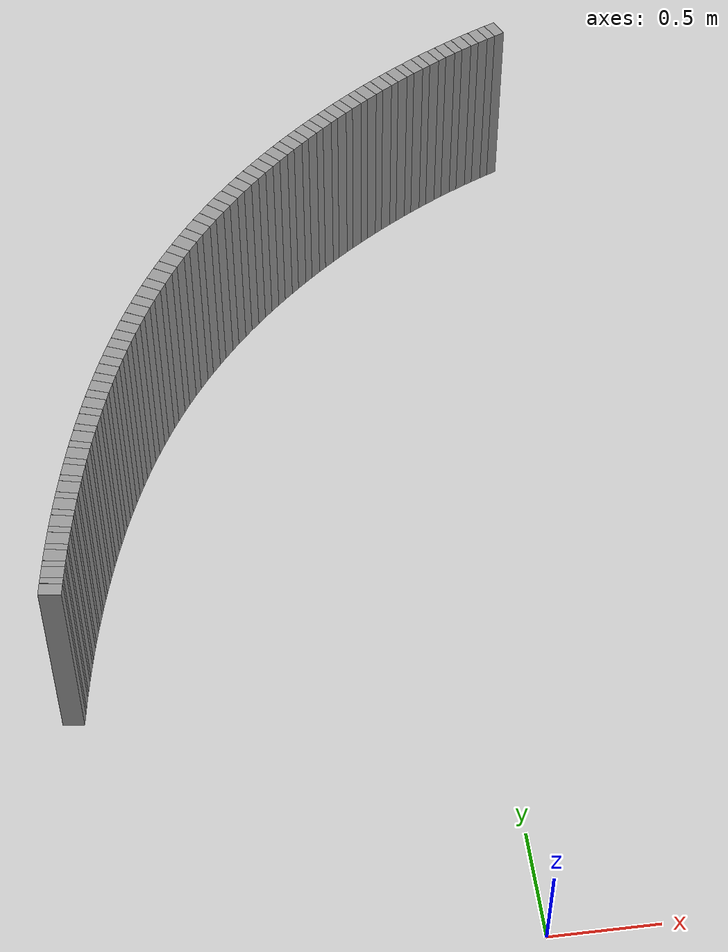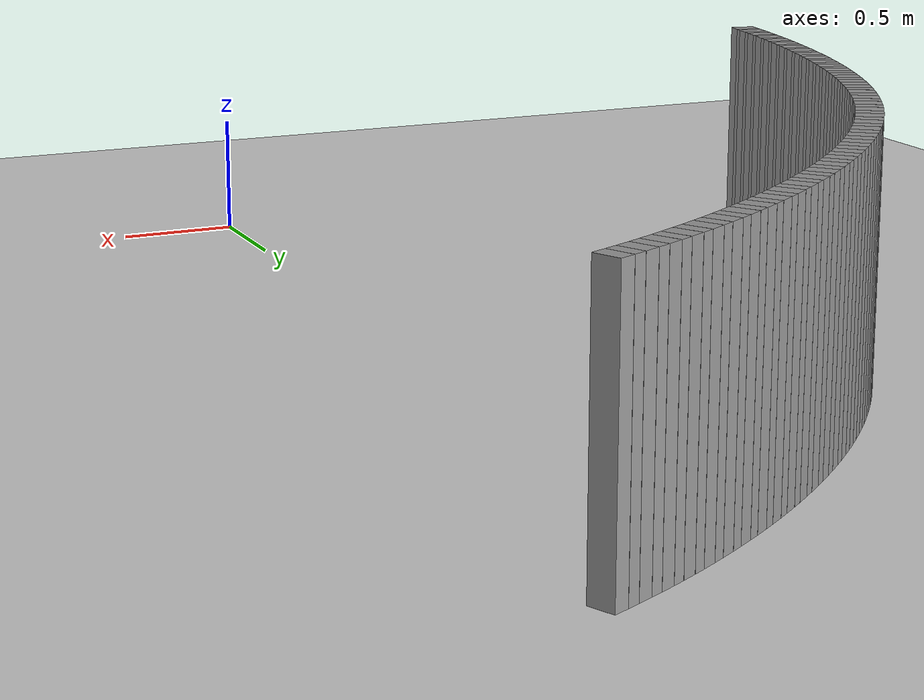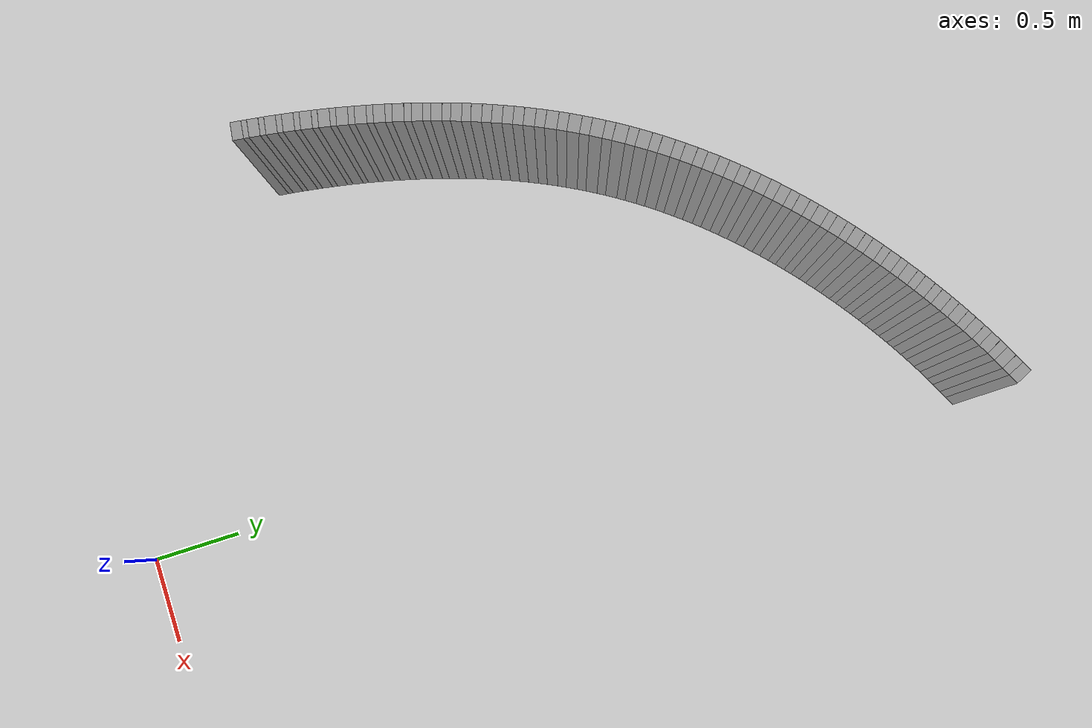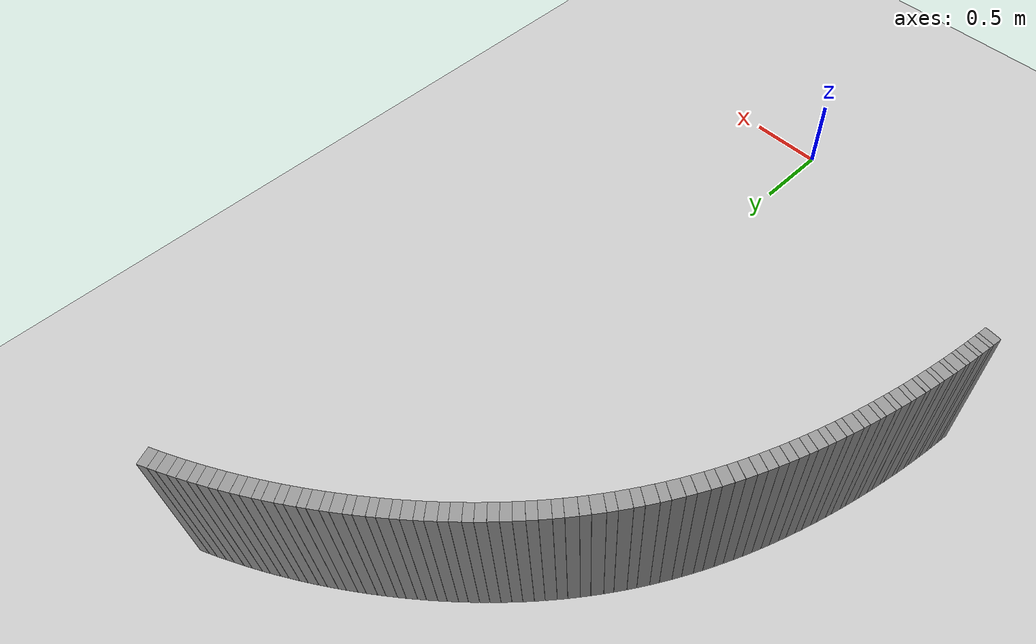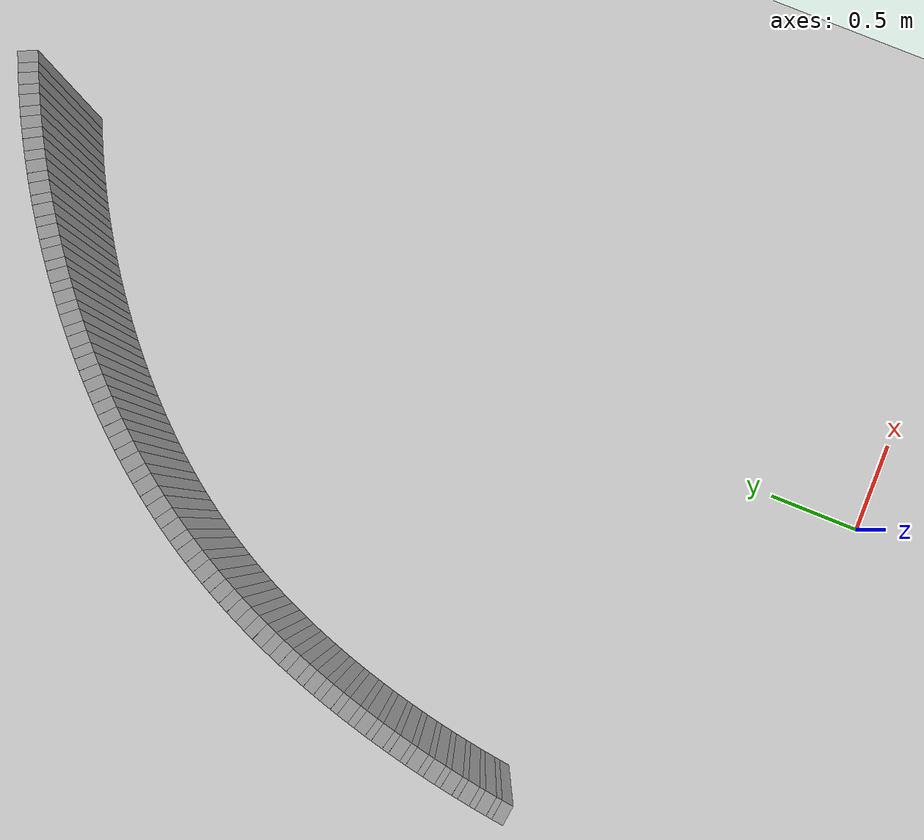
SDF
<sdf version="1.6">
 <world name="default">
  <include><uri>model://ground_plane</uri></include>
  <include><uri>model://sun</uri></include>
  <model name="wall_36_outward">
   <static>true</static>
   <link name="link">
    <collision name="collision">
     <geometry><box><size>0.05851512762365332 0.1 1.0</size></box></geometry>
    </collision>
    <visual name="visual">
     <geometry><box><size>0.05851512762365332 0.1 1.0</size></box></geometry>
     <material>
      <script><uri>file://media/materials/scripts/gazebo.material</uri><name>Gazebo/Gray</name></script>
     </material>
    </visual>
   </link>
   <pose>-1.9470424874296541 1.340607600010691 0.5 0 0 1.4470344970049562</pose>
  </model>
  <model name="wall_37_outward">
   <static>true</static>
   <link name="link">
    <collision name="collision">
     <geometry><box><size>0.030141295012214554 0.1 1.0</size></box></geometry>
    </collision>
    <visual name="visual">
     <geometry><box><size>0.030141295012214554 0.1 1.0</size></box></geometry>
     <material>
      <script><uri>file://media/materials/scripts/gazebo.material</uri><name>Gazebo/Gray</name></script>
     </material>
    </visual>
   </link>
   <pose>-1.9414577005743066 1.384582313626082 0.5 0 0 1.439499101939416</pose>
  </model>
  <model name="wall_38_outward">
   <static>true</static>
   <link name="link">
    <collision name="collision">
     <geometry><box><size>0.059911481965376726 0.1 1.0</size></box></geometry>
    </collision>
    <visual name="visual">
     <geometry><box><size>0.059911481965376726 0.1 1.0</size></box></geometry>
     <material>
      <script><uri>file://media/materials/scripts/gazebo.material</uri><name>Gazebo/Gray</name></script>
     </material>
    </visual>
   </link>
   <pose>-1.9353391597354457 1.4291907599565337 0.5 0 0 1.4319637068738675</pose>
  </model>
  <model name="wall_39_outward">
   <static>true</static>
   <link name="link">
    <collision name="collision">
     <geometry><box><size>0.030703685964613665 0.1 1.0</size></box></geometry>
    </collision>
    <visual name="visual">
     <geometry><box><size>0.030703685964613665 0.1 1.0</size></box></geometry>
     <material>
      <script><uri>file://media/materials/scripts/gazebo.material</uri><name>Gazebo/Gray</name></script>
     </material>
    </visual>
   </link>
   <pose>-1.9289525332044373 1.4740456489890659 0.5 0 0 1.424287710003456</pose>
  </model>
  <model name="wall_40_outward">
   <static>true</static>
   <link name="link">
    <collision name="collision">
     <geometry><box><size>0.06110865213101824 0.1 1.0</size></box></geometry>
    </collision>
    <visual name="visual">
     <geometry><box><size>0.06110865213101824 0.1 1.0</size></box></geometry>
     <material>
      <script><uri>file://media/materials/scripts/gazebo.material</uri><name>Gazebo/Gray</name></script>
     </material>
    </visual>
   </link>
   <pose>-1.9220190302178766 1.5194248871422116 0.5 0 0 1.416611713133052</pose>
  </model>
  <model name="wall_41_outward">
   <static>true</static>
   <link name="link">
    <collision name="collision">
     <geometry><box><size>0.031242492618105622 0.1 1.0</size></box></geometry>
    </collision>
    <visual name="visual">
     <geometry><box><size>0.031242492618105622 0.1 1.0</size></box></geometry>
     <material>
      <script><uri>file://media/materials/scripts/gazebo.material</uri><name>Gazebo/Gray</name></script>
     </material>
    </visual>
   </link>
   <pose>-1.9148071516139984 1.565033473754787 0.5 0 0 1.4088010105607598</pose>
  </model>
  <model name="wall_42_outward">
   <static>true</static>
   <link name="link">
    <collision name="collision">
     <geometry><box><size>0.06206896437567824 0.1 1.0</size></box></geometry>
    </collision>
    <visual name="visual">
     <geometry><box><size>0.06206896437567824 0.1 1.0</size></box></geometry>
     <material>
      <script><uri>file://media/materials/scripts/gazebo.material</uri><name>Gazebo/Gray</name></script>
     </material>
    </visual>
   </link>
   <pose>-1.9070430832570011 1.611038328587831 0.5 0 0 1.4009903079884467</pose>
  </model>
  <model name="wall_43_outward">
   <static>true</static>
   <link name="link">
    <collision name="collision">
     <geometry><box><size>0.03181751389419528 0.1 1.0</size></box></geometry>
    </collision>
    <visual name="visual">
     <geometry><box><size>0.03181751389419528 0.1 1.0</size></box></geometry>
     <material>
      <script><uri>file://media/materials/scripts/gazebo.material</uri><name>Gazebo/Gray</name></script>
     </material>
    </visual>
   </link>
   <pose>-1.8989854515694173 1.6572845287868891 0.5 0 0 1.3930358456307483</pose>
  </model>
  <model name="wall_44_outward">
   <static>true</static>
   <link name="link">
    <collision name="collision">
     <geometry><box><size>0.06276551478844714 0.1 1.0</size></box></geometry>
    </collision>
    <visual name="visual">
     <geometry><box><size>0.06276551478844714 0.1 1.0</size></box></geometry>
     <material>
      <script><uri>file://media/materials/scripts/gazebo.material</uri><name>Gazebo/Gray</name></script>
     </material>
    </visual>
   </link>
   <pose>-1.8903775710575765 1.703785712986872 0.5 0 0 1.3850813832730642</pose>
  </model>
  <model name="wall_45_outward">
   <static>true</static>
   <link name="link">
    <collision name="collision">
     <geometry><box><size>0.03247971047962401 0.1 1.0</size></box></geometry>
    </collision>
    <visual name="visual">
     <geometry><box><size>0.03247971047962401 0.1 1.0</size></box></geometry>
     <material>
      <script><uri>file://media/materials/scripts/gazebo.material</uri><name>Gazebo/Gray</name></script>
     </material>
    </visual>
   </link>
   <pose>-1.8814545922067465 1.7505645552021567 0.5 0 0 1.3769613664216742</pose>
  </model>
  <model name="wall_46_outward">
   <static>true</static>
   <link name="link">
    <collision name="collision">
     <geometry><box><size>0.06318203907273635 0.1 1.0</size></box></geometry>
    </collision>
    <visual name="visual">
     <geometry><box><size>0.06318203907273635 0.1 1.0</size></box></geometry>
     <material>
      <script><uri>file://media/materials/scripts/gazebo.material</uri><name>Gazebo/Gray</name></script>
     </material>
    </visual>
   </link>
   <pose>-1.8719897320360075 1.7974492560894066 0.5 0 0 1.3688413495702862</pose>
  </model>
  <model name="wall_47_outward">
   <static>true</static>
   <link name="link">
    <collision name="collision">
     <geometry><box><size>0.03326260273348168 0.1 1.0</size></box></geometry>
    </collision>
    <visual name="visual">
     <geometry><box><size>0.03326260273348168 0.1 1.0</size></box></geometry>
     <material>
      <script><uri>file://media/materials/scripts/gazebo.material</uri><name>Gazebo/Gray</name></script>
     </material>
    </visual>
   </link>
   <pose>-1.8621816858538134 1.8446632172801827 0.5 0 0 1.3605256030459898</pose>
  </model>
  <model name="wall_48_outward">
   <static>true</static>
   <link name="link">
    <collision name="collision">
     <geometry><box><size>0.06331190520389895 0.1 1.0</size></box></geometry>
    </collision>
    <visual name="visual">
     <geometry><box><size>0.06331190520389895 0.1 1.0</size></box></geometry>
     <material>
      <script><uri>file://media/materials/scripts/gazebo.material</uri><name>Gazebo/Gray</name></script>
     </material>
    </visual>
   </link>
   <pose>-1.8518457313955587 1.8918309025588722 0.5 0 0 1.3522098565217038</pose>
  </model>
  <model name="wall_49_outward">
   <static>true</static>
   <link name="link">
    <collision name="collision">
     <geometry><box><size>0.034242978003103164 0.1 1.0</size></box></geometry>
    </collision>
    <visual name="visual">
     <geometry><box><size>0.034242978003103164 0.1 1.0</size></box></geometry>
     <material>
      <script><uri>file://media/materials/scripts/gazebo.material</uri><name>Gazebo/Gray</name></script>
     </material>
    </visual>
   </link>
   <pose>-1.841125396906862 1.9394152856705875 0.5 0 0 1.3436490074532073</pose>
  </model>
  <model name="wall_50_outward">
   <static>true</static>
   <link name="link">
    <collision name="collision">
     <geometry><box><size>0.06316349887364199 0.1 1.0</size></box></geometry>
    </collision>
    <visual name="visual">
     <geometry><box><size>0.06316349887364199 0.1 1.0</size></box></geometry>
     <material>
      <script><uri>file://media/materials/scripts/gazebo.material</uri><name>Gazebo/Gray</name></script>
     </material>
    </visual>
   </link>
   <pose>-1.8298943165576484 1.9868054601793745 0.5 0 0 1.335088158384695</pose>
  </model>
  <model name="wall_51_outward">
   <static>true</static>
   <link name="link">
    <collision name="collision">
     <geometry><box><size>0.03551502997922691 0.1 1.0</size></box></geometry>
    </collision>
    <visual name="visual">
     <geometry><box><size>0.03551502997922691 0.1 1.0</size></box></geometry>
     <material>
      <script><uri>file://media/materials/scripts/gazebo.material</uri><name>Gazebo/Gray</name></script>
     </material>
    </visual>
   </link>
   <pose>-1.8182188960074326 2.0347429544611693 0.5 0 0 1.3262092842302167</pose>
  </model>
  <model name="wall_52_outward">
   <static>true</static>
   <link name="link">
    <collision name="collision">
     <geometry><box><size>0.0627532570535955 0.1 1.0</size></box></geometry>
    </collision>
    <visual name="visual">
     <geometry><box><size>0.0627532570535955 0.1 1.0</size></box></geometry>
     <material>
      <script><uri>file://media/materials/scripts/gazebo.material</uri><name>Gazebo/Gray</name></script>
     </material>
    </visual>
   </link>
   <pose>-1.8060507895783742 2.082346077479201 0.5 0 0 1.317330410075743</pose>
  </model>
  <model name="wall_53_outward">
   <static>true</static>
   <link name="link">
    <collision name="collision">
     <geometry><box><size>0.037159612835387726 0.1 1.0</size></box></geometry>
    </collision>
    <visual name="visual">
     <geometry><box><size>0.037159612835387726 0.1 1.0</size></box></geometry>
     <material>
      <script><uri>file://media/materials/scripts/gazebo.material</uri><name>Gazebo/Gray</name></script>
     </material>
    </visual>
   </link>
   <pose>-1.7933567934781605 2.1306623019021345 0.5 0 0 1.308040373238367</pose>
  </model>
  <model name="wall_54_outward">
   <static>true</static>
   <link name="link">
    <collision name="collision">
     <geometry><box><size>0.062111140385945215 0.1 1.0</size></box></geometry>
    </collision>
    <visual name="visual">
     <geometry><box><size>0.062111140385945215 0.1 1.0</size></box></geometry>
     <material>
      <script><uri>file://media/materials/scripts/gazebo.material</uri><name>Gazebo/Gray</name></script>
     </material>
    </visual>
   </link>
   <pose>-1.7801861038155211 2.1785178527508213 0.5 0 0 1.2987503364009896</pose>
  </model>
  <model name="wall_55_outward">
   <static>true</static>
   <link name="link">
    <collision name="collision">
     <geometry><box><size>0.03920906291768073 0.1 1.0</size></box></geometry>
    </collision>
    <visual name="visual">
     <geometry><box><size>0.03920906291768073 0.1 1.0</size></box></geometry>
     <material>
      <script><uri>file://media/materials/scripts/gazebo.material</uri><name>Gazebo/Gray</name></script>
     </material>
    </visual>
   </link>
   <pose>-1.7663887471592394 2.2272622919024005 0.5 0 0 1.2889479136906214</pose>
  </model>
  <model name="wall_56_outward">
   <static>true</static>
   <link name="link">
    <collision name="collision">
     <geometry><box><size>0.06127646381022511 0.1 1.0</size></box></geometry>
    </collision>
    <visual name="visual">
     <geometry><box><size>0.06127646381022511 0.1 1.0</size></box></geometry>
     <material>
      <script><uri>file://media/materials/scripts/gazebo.material</uri><name>Gazebo/Gray</name></script>
     </material>
    </visual>
   </link>
   <pose>-1.752126582053303 2.2754376819124733 0.5 0 0 1.2791454909802618</pose>
  </model>
  <model name="wall_57_outward">
   <static>true</static>
   <link name="link">
    <collision name="collision">
     <geometry><box><size>0.04179918478633313 0.1 1.0</size></box></geometry>
    </collision>
    <visual name="visual">
     <geometry><box><size>0.04179918478633313 0.1 1.0</size></box></geometry>
     <material>
      <script><uri>file://media/materials/scripts/gazebo.material</uri><name>Gazebo/Gray</name></script>
     </material>
    </visual>
   </link>
   <pose>-1.7370988731864154 2.324735200867993 0.5 0 0 1.2686955045911017</pose>
  </model>
  <model name="wall_58_outward">
   <static>true</static>
   <link name="link">
    <collision name="collision">
     <geometry><box><size>0.06029681220757901 0.1 1.0</size></box></geometry>
    </collision>
    <visual name="visual">
     <geometry><box><size>0.06029681220757901 0.1 1.0</size></box></geometry>
     <material>
      <script><uri>file://media/materials/scripts/gazebo.material</uri><name>Gazebo/Gray</name></script>
     </material>
    </visual>
   </link>
   <pose>-1.721610450878877 2.3733761107940663 0.5 0 0 1.2582455182019454</pose>
  </model>
  <model name="wall_59_outward">
   <static>true</static>
   <link name="link">
    <collision name="collision">
     <geometry><box><size>0.04490399578796643 0.1 1.0</size></box></geometry>
    </collision>
    <visual name="visual">
     <geometry><box><size>0.04490399578796643 0.1 1.0</size></box></geometry>
     <material>
      <script><uri>file://media/materials/scripts/gazebo.material</uri><name>Gazebo/Gray</name></script>
     </material>
    </visual>
   </link>
   <pose>-1.7051971176817826 2.4233493004802633 0.5 0 0 1.2470192834524751</pose>
  </model>
  <model name="wall_60_outward">
   <static>true</static>
   <link name="link">
    <collision name="collision">
     <geometry><box><size>0.05922845943594854 0.1 1.0</size></box></geometry>
    </collision>
    <visual name="visual">
     <geometry><box><size>0.05922845943594854 0.1 1.0</size></box></geometry>
     <material>
      <script><uri>file://media/materials/scripts/gazebo.material</uri><name>Gazebo/Gray</name></script>
     </material>
    </visual>
   </link>
   <pose>-1.6883176858698055 2.47260265614514 0.5 0 0 1.2357930487030033</pose>
  </model>
  <model name="wall_61_outward">
   <static>true</static>
   <link name="link">
    <collision name="collision">
     <geometry><box><size>0.048531635326042565 0.1 1.0</size></box></geometry>
    </collision>
    <visual name="visual">
     <geometry><box><size>0.048531635326042565 0.1 1.0</size></box></geometry>
     <material>
      <script><uri>file://media/materials/scripts/gazebo.material</uri><name>Gazebo/Gray</name></script>
     </material>
    </visual>
   </link>
   <pose>-1.6703259596412994 2.523388988006415 0.5 0 0 1.2236598421759592</pose>
  </model>
  <model name="wall_62_outward">
   <static>true</static>
   <link name="link">
    <collision name="collision">
     <geometry><box><size>0.058131444615278374 0.1 1.0</size></box></geometry>
    </collision>
    <visual name="visual">
     <geometry><box><size>0.058131444615278374 0.1 1.0</size></box></geometry>
     <material>
      <script><uri>file://media/materials/scripts/gazebo.material</uri><name>Gazebo/Gray</name></script>
     </material>
    </visual>
   </link>
   <pose>-1.6518513347425898 2.5734173555664475 0.5 0 0 1.2115266356489098</pose>
  </model>
  <model name="wall_63_outward">
   <static>true</static>
   <link name="link">
    <collision name="collision">
     <geometry><box><size>0.05257569714983823 0.1 1.0</size></box></geometry>
    </collision>
    <visual name="visual">
     <geometry><box><size>0.05257569714983823 0.1 1.0</size></box></geometry>
     <material>
      <script><uri>file://media/materials/scripts/gazebo.material</uri><name>Gazebo/Gray</name></script>
     </material>
    </visual>
   </link>
   <pose>-1.632066870419663 2.6251132042533154 0.5 0 0 1.1983823328686076</pose>
  </model>
  <model name="wall_64_outward">
   <static>true</static>
   <link name="link">
    <collision name="collision">
     <geometry><box><size>0.05706681265305787 0.1 1.0</size></box></geometry>
    </collision>
    <visual name="visual">
     <geometry><box><size>0.05706681265305787 0.1 1.0</size></box></geometry>
     <material>
      <script><uri>file://media/materials/scripts/gazebo.material</uri><name>Gazebo/Gray</name></script>
     </material>
    </visual>
   </link>
   <pose>-1.6117708983937162 2.676037794744469 0.5 0 0 1.1852380300883172</pose>
  </model>
  <model name="wall_65_outward">
   <static>true</static>
   <link name="link">
    <collision name="collision">
     <geometry><box><size>0.05687668737168199 0.1 1.0</size></box></geometry>
    </collision>
    <visual name="visual">
     <geometry><box><size>0.05687668737168199 0.1 1.0</size></box></geometry>
     <material>
      <script><uri>file://media/materials/scripts/gazebo.material</uri><name>Gazebo/Gray</name></script>
     </material>
    </visual>
   </link>
   <pose>-1.589971558549408 2.7286724317441533 0.5 0 0 1.1710183790516235</pose>
  </model>
  <model name="wall_66_outward">
   <static>true</static>
   <link name="link">
    <collision name="collision">
     <geometry><box><size>0.056096900825243254 0.1 1.0</size></box></geometry>
    </collision>
    <visual name="visual">
     <geometry><box><size>0.056096900825243254 0.1 1.0</size></box></geometry>
     <material>
      <script><uri>file://media/materials/scripts/gazebo.material</uri><name>Gazebo/Gray</name></script>
     </material>
    </visual>
   </link>
   <pose>-1.56761984461702 2.780547257147354 0.5 0 0 1.1567987280149152</pose>
  </model>
  <model name="wall_67_outward">
   <static>true</static>
   <link name="link">
    <collision name="collision">
     <geometry><box><size>0.06114696510490706 0.1 1.0</size></box></geometry>
    </collision>
    <visual name="visual">
     <geometry><box><size>0.06114696510490706 0.1 1.0</size></box></geometry>
     <material>
      <script><uri>file://media/materials/scripts/gazebo.material</uri><name>Gazebo/Gray</name></script>
     </material>
    </visual>
   </link>
   <pose>-1.5436114096255436 2.8340255300123283 0.5 0 0 1.141511391297089</pose>
  </model>
  <model name="wall_68_outward">
   <static>true</static>
   <link name="link">
    <collision name="collision">
     <geometry><box><size>0.05527921187933009 0.1 1.0</size></box></geometry>
    </collision>
    <visual name="visual">
     <geometry><box><size>0.05527921187933009 0.1 1.0</size></box></geometry>
     <material>
      <script><uri>file://media/materials/scripts/gazebo.material</uri><name>Gazebo/Gray</name></script>
     </material>
    </visual>
   </link>
   <pose>-1.5189990782692024 2.886777774826888 0.5 0 0 1.12622405457927</pose>
  </model>
  <model name="wall_69_outward">
   <static>true</static>
   <link name="link">
    <collision name="collision">
     <geometry><box><size>0.06513547587774239 0.1 1.0</size></box></geometry>
    </collision>
    <visual name="visual">
     <geometry><box><size>0.06513547587774239 0.1 1.0</size></box></geometry>
     <material>
      <script><uri>file://media/materials/scripts/gazebo.material</uri><name>Gazebo/Gray</name></script>
     </material>
    </visual>
   </link>
   <pose>-1.4926286784846798 2.940900668005831 0.5 0 0 1.1099394658735875</pose>
  </model>
  <model name="wall_70_outward">
   <static>true</static>
   <link name="link">
    <collision name="collision">
     <geometry><box><size>0.0546627536988429 0.1 1.0</size></box></geometry>
    </collision>
    <visual name="visual">
     <geometry><box><size>0.0546627536988429 0.1 1.0</size></box></geometry>
     <material>
      <script><uri>file://media/materials/scripts/gazebo.material</uri><name>Gazebo/Gray</name></script>
     </material>
    </visual>
   </link>
   <pose>-1.4655935829752147 2.994349442726532 0.5 0 0 1.0936548771679133</pose>
  </model>
  <model name="wall_71_outward">
   <static>true</static>
   <link name="link">
    <collision name="collision">
     <geometry><box><size>0.06843347329352682 0.1 1.0</size></box></geometry>
    </collision>
    <visual name="visual">
     <geometry><box><size>0.06843347329352682 0.1 1.0</size></box></geometry>
     <material>
      <script><uri>file://media/materials/scripts/gazebo.material</uri><name>Gazebo/Gray</name></script>
     </material>
    </visual>
   </link>
   <pose>-1.4368104072647148 3.0487500431290107 0.5 0 0 1.0765456741419932</pose>
  </model>
  <model name="wall_72_outward">
   <static>true</static>
   <link name="link">
    <collision name="collision">
     <geometry><box><size>0.05428522615266177 0.1 1.0</size></box></geometry>
    </collision>
    <visual name="visual">
     <geometry><box><size>0.05428522615266177 0.1 1.0</size></box></geometry>
     <material>
      <script><uri>file://media/materials/scripts/gazebo.material</uri><name>Gazebo/Gray</name></script>
     </material>
    </visual>
   </link>
   <pose>-1.407296334612559 3.102542398141086 0.5 0 0 1.0594364711160722</pose>
  </model>
  <model name="wall_73_outward">
   <static>true</static>
   <link name="link">
    <collision name="collision">
     <geometry><box><size>0.07073385974991644 0.1 1.0</size></box></geometry>
    </collision>
    <visual name="visual">
     <geometry><box><size>0.07073385974991644 0.1 1.0</size></box></geometry>
     <material>
      <script><uri>file://media/materials/scripts/gazebo.material</uri><name>Gazebo/Gray</name></script>
     </material>
    </visual>
   </link>
   <pose>-1.3761637384397991 3.156744835454118 0.5 0 0 1.0417520844311</pose>
  </model>
  <model name="wall_74_outward">
   <static>true</static>
   <link name="link">
    <collision name="collision">
     <geometry><box><size>0.05417058609555801 0.1 1.0</size></box></geometry>
    </collision>
    <visual name="visual">
     <geometry><box><size>0.05417058609555801 0.1 1.0</size></box></geometry>
     <material>
      <script><uri>file://media/materials/scripts/gazebo.material</uri><name>Gazebo/Gray</name></script>
     </material>
    </visual>
   </link>
   <pose>-1.3442322268360458 3.2104138129347484 0.5 0 0 1.0240676977461278</pose>
  </model>
  <model name="wall_75_outward">
   <static>true</static>
   <link name="link">
    <collision name="collision">
     <geometry><box><size>0.07178554663241363 0.1 1.0</size></box></geometry>
    </collision>
    <visual name="visual">
     <geometry><box><size>0.07178554663241363 0.1 1.0</size></box></geometry>
     <material>
      <script><uri>file://media/materials/scripts/gazebo.material</uri><name>Gazebo/Gray</name></script>
     </material>
    </visual>
   </link>
   <pose>-1.3109429695746762 3.2638717315287855 0.5 0 0 1.00612034760789</pose>
  </model>
  <model name="wall_76_outward">
   <static>true</static>
   <link name="link">
    <collision name="collision">
     <geometry><box><size>0.05432564529804905 0.1 1.0</size></box></geometry>
    </collision>
    <visual name="visual">
     <geometry><box><size>0.05432564529804905 0.1 1.0</size></box></geometry>
     <material>
      <script><uri>file://media/materials/scripts/gazebo.material</uri><name>Gazebo/Gray</name></script>
     </material>
    </visual>
   </link>
   <pose>-1.2767898050830626 3.3168741419257857 0.5 0 0 0.9881729974696609</pose>
  </model>
  <model name="wall_77_outward">
   <static>true</static>
   <link name="link">
    <collision name="collision">
     <geometry><box><size>0.07160525797664448 0.1 1.0</size></box></geometry>
    </collision>
    <visual name="visual">
     <geometry><box><size>0.07160525797664448 0.1 1.0</size></box></geometry>
     <material>
      <script><uri>file://media/materials/scripts/gazebo.material</uri><name>Gazebo/Gray</name></script>
     </material>
    </visual>
   </link>
   <pose>-1.2416131622804643 3.3690942552100642 0.5 0 0 0.9702707267371646</pose>
  </model>
  <model name="wall_78_outward">
   <static>true</static>
   <link name="link">
    <collision name="collision">
     <geometry><box><size>0.05473971826964413 0.1 1.0</size></box></geometry>
    </collision>
    <visual name="visual">
     <geometry><box><size>0.05473971826964413 0.1 1.0</size></box></geometry>
     <material>
      <script><uri>file://media/materials/scripts/gazebo.material</uri><name>Gazebo/Gray</name></script>
     </material>
    </visual>
   </link>
   <pose>-1.2055141385157198 3.420933523084218 0.5 0 0 0.9523684560046604</pose>
  </model>
  <model name="wall_79_outward">
   <static>true</static>
   <link name="link">
    <collision name="collision">
     <geometry><box><size>0.07015960992970768 0.1 1.0</size></box></geometry>
    </collision>
    <visual name="visual">
     <geometry><box><size>0.07015960992970768 0.1 1.0</size></box></geometry>
     <material>
      <script><uri>file://media/materials/scripts/gazebo.material</uri><name>Gazebo/Gray</name></script>
     </material>
    </visual>
   </link>
   <pose>-1.1688104292294295 3.4714558237645194 0.5 0 0 0.9348276540445286</pose>
  </model>
  <model name="wall_80_outward">
   <static>true</static>
   <link name="link">
    <collision name="collision">
     <geometry><box><size>0.05538550978526477 0.1 1.0</size></box></geometry>
    </collision>
    <visual name="visual">
     <geometry><box><size>0.05538550978526477 0.1 1.0</size></box></geometry>
     <material>
      <script><uri>file://media/materials/scripts/gazebo.material</uri><name>Gazebo/Gray</name></script>
     </material>
    </visual>
   </link>
   <pose>-1.1311379860146915 3.521664213536539 0.5 0 0 0.9172868520843916</pose>
  </model>
  <model name="wall_81_outward">
   <static>true</static>
   <link name="link">
    <collision name="collision">
     <geometry><box><size>0.0677507524285668 0.1 1.0</size></box></geometry>
    </collision>
    <visual name="visual">
     <geometry><box><size>0.0677507524285668 0.1 1.0</size></box></geometry>
     <material>
      <script><uri>file://media/materials/scripts/gazebo.material</uri><name>Gazebo/Gray</name></script>
     </material>
    </visual>
   </link>
   <pose>-1.0932534150571145 3.5701938426744126 0.5 0 0 0.9003483540104505</pose>
  </model>
  <model name="wall_82_outward">
   <static>true</static>
   <link name="link">
    <collision name="collision">
     <geometry><box><size>0.05621940040499649 0.1 1.0</size></box></geometry>
    </collision>
    <visual name="visual">
     <geometry><box><size>0.05621940040499649 0.1 1.0</size></box></geometry>
     <material>
      <script><uri>file://media/materials/scripts/gazebo.material</uri><name>Gazebo/Gray</name></script>
     </material>
    </visual>
   </link>
   <pose>-1.0543692402209621 3.618462853916585 0.5 0 0 0.8834098559365133</pose>
  </model>
  <model name="wall_83_outward">
   <static>true</static>
   <link name="link">
    <collision name="collision">
     <geometry><box><size>0.06469793516622273 0.1 1.0</size></box></geometry>
    </collision>
    <visual name="visual">
     <geometry><box><size>0.06469793516622273 0.1 1.0</size></box></geometry>
     <material>
      <script><uri>file://media/materials/scripts/gazebo.material</uri><name>Gazebo/Gray</name></script>
     </material>
    </visual>
   </link>
   <pose>-1.015605325106149 3.664856511770904 0.5 0 0 0.8672346668168872</pose>
  </model>
  <model name="wall_84_outward">
   <static>true</static>
   <link name="link">
    <collision name="collision">
     <geometry><box><size>0.05718601595901142 0.1 1.0</size></box></geometry>
    </collision>
    <visual name="visual">
     <geometry><box><size>0.05718601595901142 0.1 1.0</size></box></geometry>
     <material>
      <script><uri>file://media/materials/scripts/gazebo.material</uri><name>Gazebo/Gray</name></script>
     </material>
    </visual>
   </link>
   <pose>-0.9758294245760906 3.7110253337804204 0.5 0 0 0.8510594776972562</pose>
  </model>
  <model name="wall_85_outward">
   <static>true</static>
   <link name="link">
    <collision name="collision">
     <geometry><box><size>0.06127315137259163 0.1 1.0</size></box></geometry>
    </collision>
    <visual name="visual">
     <geometry><box><size>0.06127315137259163 0.1 1.0</size></box></geometry>
     <material>
      <script><uri>file://media/materials/scripts/gazebo.material</uri><name>Gazebo/Gray</name></script>
     </material>
    </visual>
   </link>
   <pose>-0.9364355299968261 3.7552526905588275 0.5 0 0 0.8357405907182818</pose>
  </model>
  <model name="wall_86_outward">
   <static>true</static>
   <link name="link">
    <collision name="collision">
     <geometry><box><size>0.05822298617824019 0.1 1.0</size></box></geometry>
    </collision>
    <visual name="visual">
     <geometry><box><size>0.05822298617824019 0.1 1.0</size></box></geometry>
     <material>
      <script><uri>file://media/materials/scripts/gazebo.material</uri><name>Gazebo/Gray</name></script>
     </material>
    </visual>
   </link>
   <pose>-0.896038268820148 3.799271819591289 0.5 0 0 0.8204217037393075</pose>
  </model>
  <model name="wall_87_outward">
   <static>true</static>
   <link name="link">
    <collision name="collision">
     <geometry><box><size>0.05787155949742976 0.1 1.0</size></box></geometry>
    </collision>
    <visual name="visual">
     <geometry><box><size>0.05787155949742976 0.1 1.0</size></box></geometry>
     <material>
      <script><uri>file://media/materials/scripts/gazebo.material</uri><name>Gazebo/Gray</name></script>
     </material>
    </visual>
   </link>
   <pose>-0.8561509474812807 3.841441846241131 0.5 0 0 0.8059533090813394</pose>
  </model>
  <model name="wall_88_outward">
   <static>true</static>
   <link name="link">
    <collision name="collision">
     <geometry><box><size>0.05926475247304709 0.1 1.0</size></box></geometry>
    </collision>
    <visual name="visual">
     <geometry><box><size>0.05926475247304709 0.1 1.0</size></box></geometry>
     <material>
      <script><uri>file://media/materials/scripts/gazebo.material</uri><name>Gazebo/Gray</name></script>
     </material>
    </visual>
   </link>
   <pose>-0.8152897968975125 3.883399155267605 0.5 0 0 0.7914849144233705</pose>
  </model>
  <model name="wall_89_outward">
   <static>true</static>
   <link name="link">
    <collision name="collision">
     <geometry><box><size>0.054712216489178005 0.1 1.0</size></box></geometry>
    </collision>
    <visual name="visual">
     <geometry><box><size>0.054712216489178005 0.1 1.0</size></box></geometry>
     <material>
      <script><uri>file://media/materials/scripts/gazebo.material</uri><name>Gazebo/Gray</name></script>
     </material>
    </visual>
   </link>
   <pose>-0.7749744844443324 3.9236758393258686 0.5 0 0 0.7778064337625529</pose>
  </model>
  <model name="wall_90_outward">
   <static>true</static>
   <link name="link">
    <collision name="collision">
     <geometry><box><size>0.060247963004456055 0.1 1.0</size></box></geometry>
    </collision>
    <visual name="visual">
     <geometry><box><size>0.060247963004456055 0.1 1.0</size></box></geometry>
     <material>
      <script><uri>file://media/materials/scripts/gazebo.material</uri><name>Gazebo/Gray</name></script>
     </material>
    </visual>
   </link>
   <pose>-0.7337354084302015 3.9637151343259895 0.5 0 0 0.76412795310173</pose>
  </model>
  <model name="wall_91_outward">
   <static>true</static>
   <link name="link">
    <collision name="collision">
     <geometry><box><size>0.05195940054164509 0.1 1.0</size></box></geometry>
    </collision>
    <visual name="visual">
     <geometry><box><size>0.05195940054164509 0.1 1.0</size></box></geometry>
     <material>
      <script><uri>file://media/materials/scripts/gazebo.material</uri><name>Gazebo/Gray</name></script>
     </material>
    </visual>
   </link>
   <pose>-0.6929974180147995 4.002288534290907 0.5 0 0 0.7511377376288968</pose>
  </model>
  <model name="wall_92_outward">
   <static>true</static>
   <link name="link">
    <collision name="collision">
     <geometry><box><size>0.06111648779227445 0.1 1.0</size></box></geometry>
    </collision>
    <visual name="visual">
     <geometry><box><size>0.06111648779227445 0.1 1.0</size></box></geometry>
     <material>
      <script><uri>file://media/materials/scripts/gazebo.material</uri><name>Gazebo/Gray</name></script>
     </material>
    </visual>
   </link>
   <pose>-0.651404086751254 4.040582136376777 0.5 0 0 0.7381475221560797</pose>
  </model>
  <model name="wall_93_outward">
   <static>true</static>
   <link name="link">
    <collision name="collision">
     <geometry><box><size>0.04975806113924808 0.1 1.0</size></box></geometry>
    </collision>
    <visual name="visual">
     <geometry><box><size>0.04975806113924808 0.1 1.0</size></box></geometry>
     <material>
      <script><uri>file://media/materials/scripts/gazebo.material</uri><name>Gazebo/Gray</name></script>
     </material>
    </visual>
   </link>
   <pose>-0.6101893929430054 4.077656693234671 0.5 0 0 0.7257076860306201</pose>
  </model>
  <model name="wall_94_outward">
   <static>true</static>
   <link name="link">
    <collision name="collision">
     <geometry><box><size>0.06182487304968128 0.1 1.0</size></box></geometry>
    </collision>
    <visual name="visual">
     <geometry><box><size>0.06182487304968128 0.1 1.0</size></box></geometry>
     <material>
      <script><uri>file://media/materials/scripts/gazebo.material</uri><name>Gazebo/Gray</name></script>
     </material>
    </visual>
   </link>
   <pose>-0.5682022912505436 4.114394304481375 0.5 0 0 0.7132678499051859</pose>
  </model>
  <model name="wall_95_outward">
   <static>true</static>
   <link name="link">
    <collision name="collision">
     <geometry><box><size>0.04813895789567052 0.1 1.0</size></box></geometry>
    </collision>
    <visual name="visual">
     <geometry><box><size>0.04813895789567052 0.1 1.0</size></box></geometry>
     <material>
      <script><uri>file://media/materials/scripts/gazebo.material</uri><name>Gazebo/Gray</name></script>
     </material>
    </visual>
   </link>
   <pose>-0.526435226519457 4.150149242112258 0.5 0 0 0.7012328199038356</pose>
  </model>
  <model name="wall_96_outward">
   <static>true</static>
   <link name="link">
    <collision name="collision">
     <geometry><box><size>0.06234103101399052 0.1 1.0</size></box></geometry>
    </collision>
    <visual name="visual">
     <geometry><box><size>0.06234103101399052 0.1 1.0</size></box></geometry>
     <material>
      <script><uri>file://media/materials/scripts/gazebo.material</uri><name>Gazebo/Gray</name></script>
     </material>
    </visual>
   </link>
   <pose>-0.4839889587270936 4.185499810287904 0.5 0 0 0.689197789902488</pose>
  </model>
  <model name="wall_97_outward">
   <static>true</static>
   <link name="link">
    <collision name="collision">
     <geometry><box><size>0.047108871432831836 0.1 1.0</size></box></geometry>
    </collision>
    <visual name="visual">
     <geometry><box><size>0.047108871432831836 0.1 1.0</size></box></geometry>
     <material>
      <script><uri>file://media/materials/scripts/gazebo.material</uri><name>Gazebo/Gray</name></script>
     </material>
    </visual>
   </link>
   <pose>-0.44157948056436447 4.220085278459619 0.5 0 0 0.6774202997716591</pose>
  </model>
  <model name="wall_98_outward">
   <static>true</static>
   <link name="link">
    <collision name="collision">
     <geometry><box><size>0.06264963901497629 0.1 1.0</size></box></geometry>
    </collision>
    <visual name="visual">
     <geometry><box><size>0.06264963901497629 0.1 1.0</size></box></geometry>
     <material>
      <script><uri>file://media/materials/scripts/gazebo.material</uri><name>Gazebo/Gray</name></script>
     </material>
    </visual>
   </link>
   <pose>-0.39858845120819275 4.2541939533822095 0.5 0 0 0.6656428096408255</pose>
  </model>
  <model name="wall_99_outward">
   <static>true</static>
   <link name="link">
    <collision name="collision">
     <geometry><box><size>0.04658781869734884 0.1 1.0</size></box></geometry>
    </collision>
    <visual name="visual">
     <geometry><box><size>0.04658781869734884 0.1 1.0</size></box></geometry>
     <material>
      <script><uri>file://media/materials/scripts/gazebo.material</uri><name>Gazebo/Gray</name></script>
     </material>
    </visual>
   </link>
   <pose>-0.3554634255976288 4.287710199035731 0.5 0 0 0.6539955916291489</pose>
  </model>
  <model name="wall_100_outward">
   <static>true</static>
   <link name="link">
    <collision name="collision">
     <geometry><box><size>0.0627495937303206 0.1 1.0</size></box></geometry>
    </collision>
    <visual name="visual">
     <geometry><box><size>0.0627495937303206 0.1 1.0</size></box></geometry>
     <material>
      <script><uri>file://media/materials/scripts/gazebo.material</uri><name>Gazebo/Gray</name></script>
     </material>
    </visual>
   </link>
   <pose>-0.31185447520802567 4.3206772696038165 0.5 0 0 0.6423483736174976</pose>
  </model>
  <model name="wall_101_outward">
   <static>true</static>
   <link name="link">
    <collision name="collision">
     <geometry><box><size>0.046490260365927634 0.1 1.0</size></box></geometry>
    </collision>
    <visual name="visual">
     <geometry><box><size>0.046490260365927634 0.1 1.0</size></box></geometry>
     <material>
      <script><uri>file://media/materials/scripts/gazebo.material</uri><name>Gazebo/Gray</name></script>
     </material>
    </visual>
   </link>
   <pose>-0.26796019079871225 4.353181572477684 0.5 0 0 0.6307255468396452</pose>
  </model>
  <model name="wall_102_outward">
   <static>true</static>
   <link name="link">
    <collision name="collision">
     <geometry><box><size>0.06265464741328072 0.1 1.0</size></box></geometry>
    </collision>
    <visual name="visual">
     <geometry><box><size>0.06265464741328072 0.1 1.0</size></box></geometry>
     <material>
      <script><uri>file://media/materials/scripts/gazebo.material</uri><name>Gazebo/Gray</name></script>
     </material>
    </visual>
   </link>
   <pose>-0.22367447115828942 4.385069334815534 0.5 0 0 0.619102720061783</pose>
  </model>
  <model name="wall_103_outward">
   <static>true</static>
   <link name="link">
    <collision name="collision">
     <geometry><box><size>0.04676311820269932 0.1 1.0</size></box></geometry>
    </collision>
    <visual name="visual">
     <geometry><box><size>0.04676311820269932 0.1 1.0</size></box></geometry>
     <material>
      <script><uri>file://media/materials/scripts/gazebo.material</uri><name>Gazebo/Gray</name></script>
     </material>
    </visual>
   </link>
   <pose>-0.17896226126117254 4.416593611640778 0.5 0 0 0.6074116741898198</pose>
  </model>
  <model name="wall_104_outward">
   <static>true</static>
   <link name="link">
    <collision name="collision">
     <geometry><box><size>0.062392492676446615 0.1 1.0</size></box></geometry>
    </collision>
    <visual name="visual">
     <geometry><box><size>0.062392492676446615 0.1 1.0</size></box></geometry>
     <material>
      <script><uri>file://media/materials/scripts/gazebo.material</uri><name>Gazebo/Gray</name></script>
     </material>
    </visual>
   </link>
   <pose>-0.13394049037843248 4.447442879009953 0.5 0 0 0.595720628317866</pose>
  </model>
  <model name="wall_105_outward">
   <static>true</static>
   <link name="link">
    <collision name="collision"><geometry><box><size>0.047226005568981 0.1 1.0</size></box></geometry></collision>
    <visual name="visual">
     <geometry><box><size>0.047226005568981 0.1 1.0</size></box></geometry>
     <material>
      <script><uri>file://media/materials/scripts/gazebo.material</uri><name>Gazebo/Gray</name></script>
     </material>
    </visual>
   </link>
   <pose>-0.08841737669232674 4.477964956654513 0.5 0 0 0.5839138526168753</pose>
  </model>
  <model name="wall_106_outward">
   <static>true</static>
   <link name="link">
    <collision name="collision">
     <geometry><box><size>0.06199836318927588 0.1 1.0</size></box></geometry>
    </collision>
    <visual name="visual">
     <geometry><box><size>0.06199836318927588 0.1 1.0</size></box></geometry>
     <material>
      <script><uri>file://media/materials/scripts/gazebo.material</uri><name>Gazebo/Gray</name></script>
     </material>
    </visual>
   </link>
   <pose>-0.042653844331084545 4.507765757837792 0.5 0 0 0.5721070769158756</pose>
  </model>
  <model name="wall_107_outward">
   <static>true</static>
   <link name="link">
    <collision name="collision">
     <geometry><box><size>0.04782455684405977 0.1 1.0</size></box></geometry>
    </collision>
    <visual name="visual">
     <geometry><box><size>0.04782455684405977 0.1 1.0</size></box></geometry>
     <material>
      <script><uri>file://media/materials/scripts/gazebo.material</uri><name>Gazebo/Gray</name></script>
     </material>
    </visual>
   </link>
   <pose>0.0036669777770815815 4.537253787847863 0.5 0 0 0.5601506528329917</pose>
  </model>
  <model name="wall_108_outward">
   <static>true</static>
   <link name="link">
    <collision name="collision">
     <geometry><box><size>0.06151546561476497 0.1 1.0</size></box></geometry>
    </collision>
    <visual name="visual">
     <geometry><box><size>0.06151546561476497 0.1 1.0</size></box></geometry>
     <material>
      <script><uri>file://media/materials/scripts/gazebo.material</uri><name>Gazebo/Gray</name></script>
     </material>
    </visual>
   </link>
   <pose>0.050175573572574184 4.565988009671409 0.5 0 0 0.5481942287500794</pose>
  </model>
  <model name="wall_109_outward">
   <static>true</static>
   <link name="link">
    <collision name="collision">
     <geometry><box><size>0.048373865811101306 0.1 1.0</size></box></geometry>
    </collision>
    <visual name="visual">
     <geometry><box><size>0.048373865811101306 0.1 1.0</size></box></geometry>
     <material>
      <script><uri>file://media/materials/scripts/gazebo.material</uri><name>Gazebo/Gray</name></script>
     </material>
    </visual>
   </link>
   <pose>0.09721995967759989 4.594371688438731 0.5 0 0 0.5361004674957849</pose>
  </model>
  <model name="wall_110_outward">
   <static>true</static>
   <link name="link">
    <collision name="collision">
     <geometry><box><size>0.060987364798984284 0.1 1.0</size></box></geometry>
    </collision>
    <visual name="visual">
     <geometry><box><size>0.060987364798984284 0.1 1.0</size></box></geometry>
     <material>
      <script><uri>file://media/materials/scripts/gazebo.material</uri><name>Gazebo/Gray</name></script>
     </material>
    </visual>
   </link>
   <pose>0.1444157180552914 4.62198368238039 0.5 0 0 0.5240067062414634</pose>
  </model>
  <model name="wall_111_outward">
   <static>true</static>
   <link name="link">
    <collision name="collision">
     <geometry><box><size>0.04878139132830282 0.1 1.0</size></box></geometry>
    </collision>
    <visual name="visual">
     <geometry><box><size>0.04878139132830282 0.1 1.0</size></box></geometry>
     <material>
      <script><uri>file://media/materials/scripts/gazebo.material</uri><name>Gazebo/Gray</name></script>
     </material>
    </visual>
   </link>
   <pose>0.19208304638457374 4.6491868098499225 0.5 0 0 0.5118110560938953</pose>
  </model>
  <model name="wall_112_outward">
   <static>true</static>
   <link name="link">
    <collision name="collision">
     <geometry><box><size>0.06045648645085862 0.1 1.0</size></box></geometry>
    </collision>
    <visual name="visual">
     <geometry><box><size>0.06045648645085862 0.1 1.0</size></box></geometry>
     <material>
      <script><uri>file://media/materials/scripts/gazebo.material</uri><name>Gazebo/Gray</name></script>
     </material>
    </visual>
   </link>
   <pose>0.23988164373176502 4.675614312924086 0.5 0 0 0.4996154059463494</pose>
  </model>
  <model name="wall_113_outward">
   <static>true</static>
   <link name="link">
    <collision name="collision">
     <geometry><box><size>0.04896308650328001 0.1 1.0</size></box></geometry>
    </collision>
    <visual name="visual">
     <geometry><box><size>0.04896308650328001 0.1 1.0</size></box></geometry>
     <material>
      <script><uri>file://media/materials/scripts/gazebo.material</uri><name>Gazebo/Gray</name></script>
     </material>
    </visual>
   </link>
   <pose>0.2880460421191703 4.701561192815284 0.5 0 0 0.4873743286141975</pose>
  </model>
  <model name="wall_114_outward">
   <static>true</static>
   <link name="link">
    <collision name="collision">
     <geometry><box><size>0.059961643426277314 0.1 1.0</size></box></geometry>
    </collision>
    <visual name="visual">
     <geometry><box><size>0.059961643426277314 0.1 1.0</size></box></geometry>
     <material>
      <script><uri>file://media/materials/scripts/gazebo.material</uri><name>Gazebo/Gray</name></script>
     </material>
    </visual>
   </link>
   <pose>0.33633698896839503 4.726741019449659 0.5 0 0 0.4751332512820582</pose>
  </model>
  <model name="wall_115_outward">
   <static>true</static>
   <link name="link">
    <collision name="collision">
     <geometry><box><size>0.048845033326650154 0.1 1.0</size></box></geometry>
    </collision>
    <visual name="visual">
     <geometry><box><size>0.048845033326650154 0.1 1.0</size></box></geometry>
     <material>
      <script><uri>file://media/materials/scripts/gazebo.material</uri><name>Gazebo/Gray</name></script>
     </material>
    </visual>
   </link>
   <pose>0.38484897398281104 4.751362175991435 0.5 0 0 0.4629216894500837</pose>
  </model>
  <model name="wall_116_outward">
   <static>true</static>
   <link name="link">
    <collision name="collision">
     <geometry><box><size>0.05953214187029429 0.1 1.0</size></box></geometry>
    </collision>
    <visual name="visual">
     <geometry><box><size>0.05953214187029429 0.1 1.0</size></box></geometry>
     <material>
      <script><uri>file://media/materials/scripts/gazebo.material</uri><name>Gazebo/Gray</name></script>
     </material>
    </visual>
   </link>
   <pose>0.4334946311452118 4.775234642563721 0.5 0 0 0.45071012761809126</pose>
  </model>
  <model name="wall_117_outward">
   <static>true</static>
   <link name="link">
    <collision name="collision">
     <geometry><box><size>0.04839317007776997 0.1 1.0</size></box></geometry>
    </collision>
    <visual name="visual">
     <geometry><box><size>0.04839317007776997 0.1 1.0</size></box></geometry>
     <material>
      <script><uri>file://media/materials/scripts/gazebo.material</uri><name>Gazebo/Gray</name></script>
     </material>
    </visual>
   </link>
   <pose>0.48219439184551327 4.798476762163014 0.5 0 0 0.4386115399440335</pose>
  </model>
  <model name="wall_118_outward">
   <static>true</static>
   <link name="link">
    <collision name="collision">
     <geometry><box><size>0.05919164802423706 0.1 1.0</size></box></geometry>
    </collision>
    <visual name="visual">
     <geometry><box><size>0.05919164802423706 0.1 1.0</size></box></geometry>
     <material>
      <script><uri>file://media/materials/scripts/gazebo.material</uri><name>Gazebo/Gray</name></script>
     </material>
    </visual>
   </link>
   <pose>0.5310450297962582 4.820996389652183 0.5 0 0 0.42651295226994784</pose>
  </model>
 </world>
</sdf>
